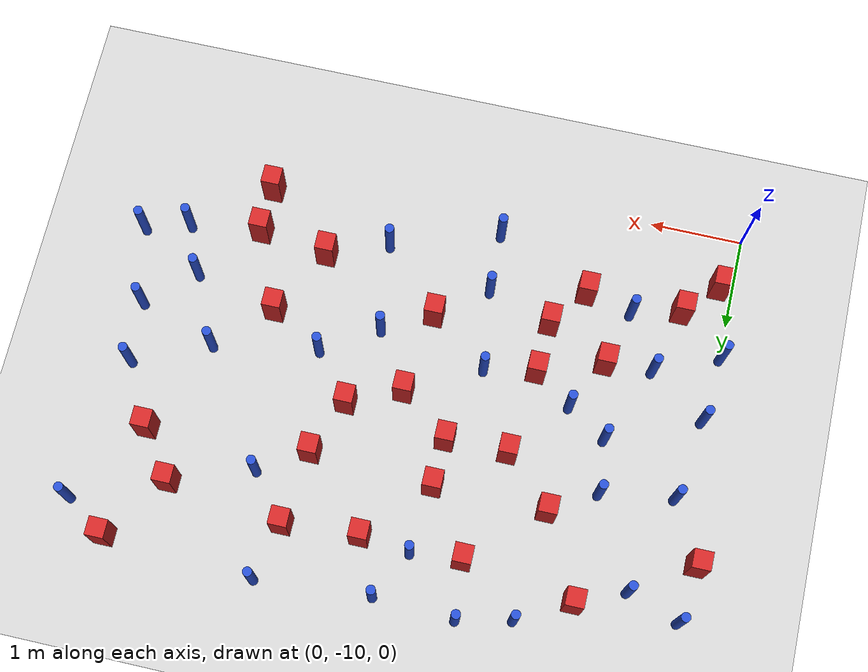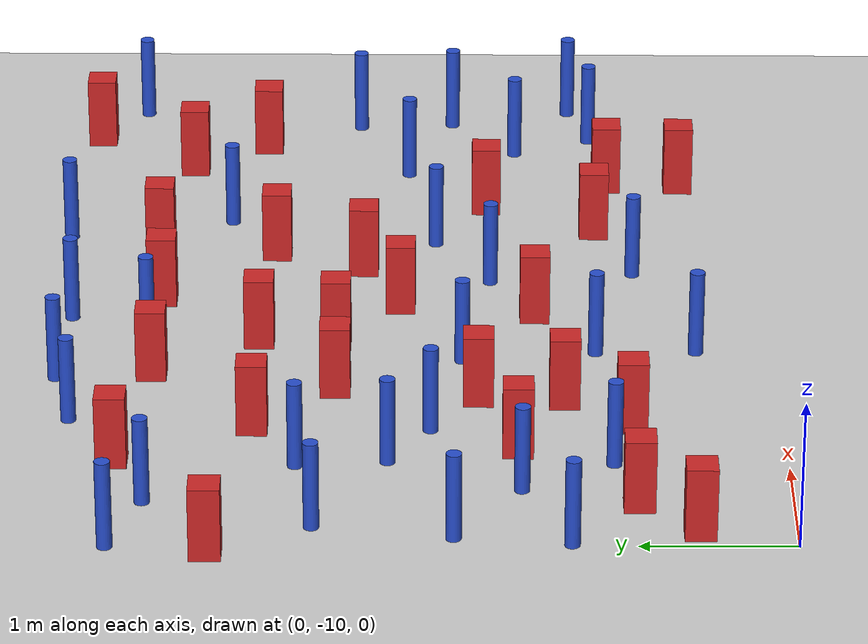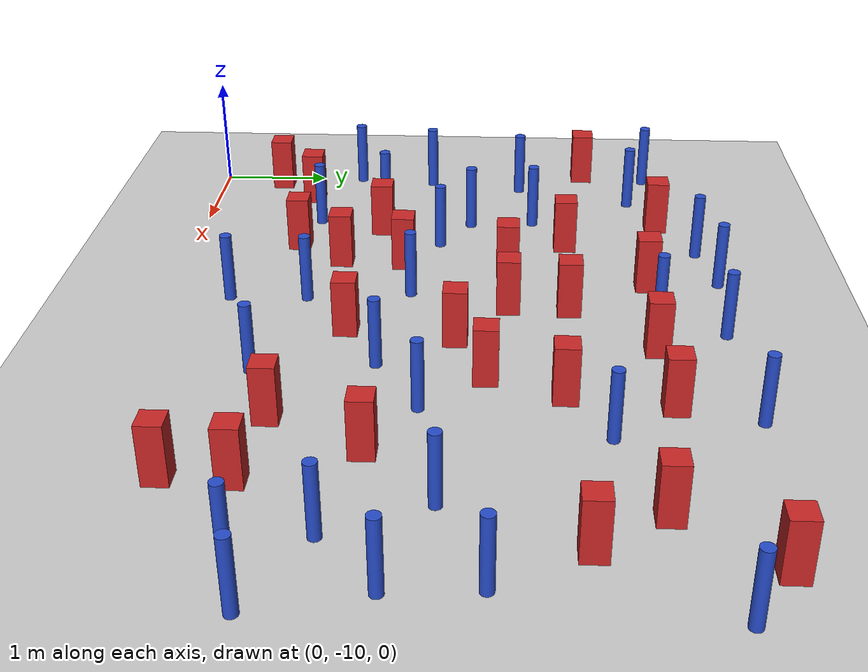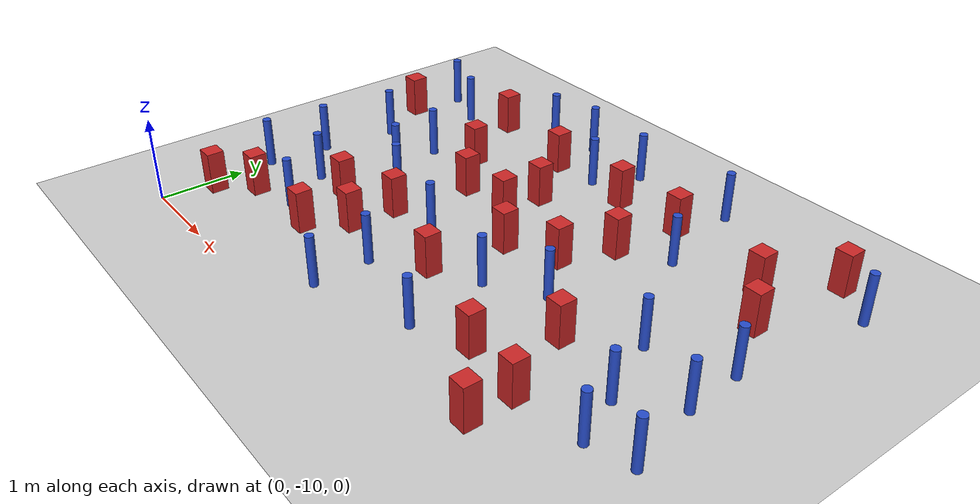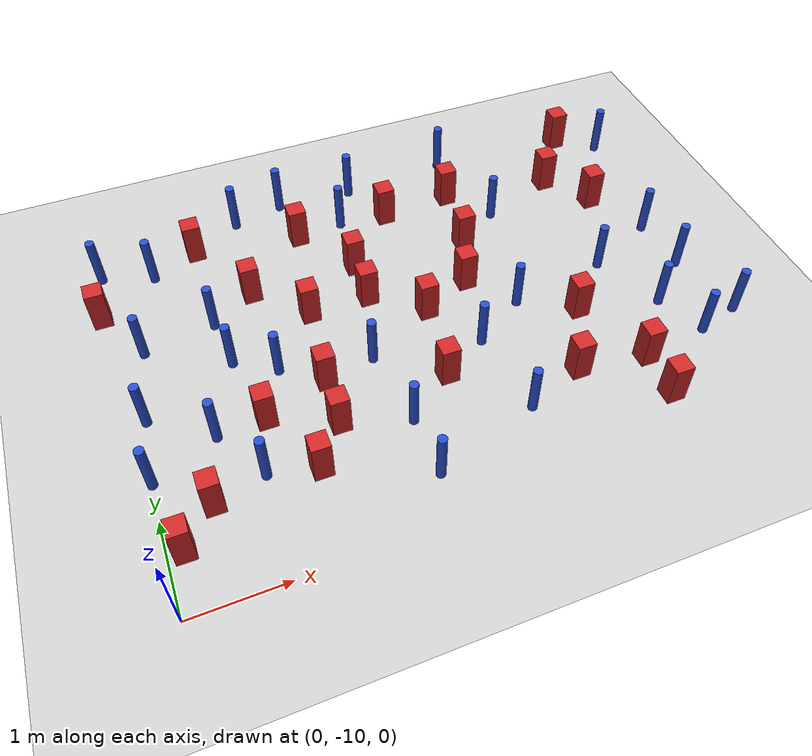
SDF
<sdf version="1.6">
 <world name="default">
  <model name="ground_plane">
   <static>1</static>
   <link name="link">
    <collision name="collision">
     <geometry><plane><normal>0 0 1</normal><size>100 100</size></plane></geometry>
     <surface><friction><ode><mu>100</mu><mu2>50</mu2></ode></friction></surface>
    </collision>
    <visual name="visual">
     <cast_shadows>0</cast_shadows>
     <geometry><plane><normal>0 0 1</normal><size>100 100</size></plane></geometry>
     <material>
      <ambient>1.0 1.0 1.0 1.0</ambient>
      <diffuse>0.8 0.8 0.8 1.0</diffuse>
      <specular>0.01 0.01 0.01 1.000000</specular>
     </material>
    </visual>
   </link>
  </model>
  <model name="square_post_obstacle0">
   <static>true</static>
   <pose>2.7218843252 -6.55835641108 8.22691968438e-08 7.2212513382e-06 -7.54495500217e-07 2.29674213826e-05</pose>
   <link name="link">
    <pose>0 0 0.25 0 -0 0</pose>
    <inertial>
     <mass>100</mass>
     <inertia>
      <ixx>0.166667</ixx>
      <ixy>0</ixy>
      <ixz>0</ixz>
      <iyy>0.166667</iyy>
      <iyz>0</iyz>
      <izz>0.166667</izz>
     </inertia>
    </inertial>
    <collision name="collision"><geometry><box><size>.2 .2 .5</size></box></geometry></collision>
    <visual name="visual">
     <geometry><box><size>.2 .2 .5</size></box></geometry>
     <material>
      <script><name>Gazebo/Red</name><uri>file://media/materials/scripts/gazebo.material</uri></script>
     </material>
    </visual>
   </link>
  </model>
  <model name="square_post_obstacle11">
   <static>true</static>
   <pose>3.11358270299 -8.40264183046 8.22691968438e-08 7.22125133819e-06 -7.54495500217e-07 2.29674213826e-05</pose>
   <link name="link">
    <pose>0 0 0.25 0 -0 0</pose>
    <inertial>
     <mass>100</mass>
     <inertia>
      <ixx>0.166667</ixx>
      <ixy>0</ixy>
      <ixz>0</ixz>
      <iyy>0.166667</iyy>
      <iyz>0</iyz>
      <izz>0.166667</izz>
     </inertia>
    </inertial>
    <collision name="collision"><geometry><box><size>.2 .2 .5</size></box></geometry></collision>
    <visual name="visual">
     <geometry><box><size>.2 .2 .5</size></box></geometry>
     <material>
      <script><name>Gazebo/Red</name><uri>file://media/materials/scripts/gazebo.material</uri></script>
     </material>
    </visual>
   </link>
  </model>
  <model name="square_post_obstacle23">
   <static>true</static>
   <pose>5.94298214702 -5.29836372098 8.22691968438e-08 7.2212513382e-06 -7.54495500217e-07 2.29674213826e-05</pose>
   <link name="link">
    <pose>0 0 0.25 0 -0 0</pose>
    <inertial>
     <mass>100</mass>
     <inertia>
      <ixx>0.166667</ixx>
      <ixy>0</ixy>
      <ixz>0</ixz>
      <iyy>0.166667</iyy>
      <iyz>0</iyz>
      <izz>0.166667</izz>
     </inertia>
    </inertial>
    <collision name="collision"><geometry><box><size>.2 .2 .5</size></box></geometry></collision>
    <visual name="visual">
     <geometry><box><size>.2 .2 .5</size></box></geometry>
     <material>
      <script><name>Gazebo/Red</name><uri>file://media/materials/scripts/gazebo.material</uri></script>
     </material>
    </visual>
   </link>
  </model>
  <model name="pole_obstacle19">
   <static>true</static>
   <pose>1.61590868251 -5.35970413288 2.88873142074e-08 -9.90536689852e-09 4.60219948989e-07 -1.2096599496e-07</pose>
   <link name="link">
    <pose>0 0 0.3 0 -0 0</pose>
    <inertial>
     <mass>1</mass>
     <inertia><ixx>0.145833</ixx><ixy>0</ixy><ixz>0</ixz><iyy>0.145833</iyy><iyz>0</iyz><izz>0.125</izz></inertia>
    </inertial>
    <collision name="collision">
     <geometry><cylinder><radius>0.05</radius><length>.6</length></cylinder></geometry>
    </collision>
    <visual name="visual">
     <geometry><cylinder><radius>0.05</radius><length>.6</length></cylinder></geometry>
     <material>
      <script><name>Gazebo/Blue</name><uri>file://media/materials/scripts/gazebo.material</uri></script>
     </material>
    </visual>
   </link>
  </model>
  <model name="pole_obstacle22">
   <static>true</static>
   <pose>5.95190879928 -8.82963823641 2.88873142074e-08 -9.9053668967e-09 4.60219948993e-07 -1.20965994957e-07</pose>
   <link name="link">
    <pose>0 0 0.3 0 -0 0</pose>
    <inertial>
     <mass>1</mass>
     <inertia><ixx>0.145833</ixx><ixy>0</ixy><ixz>0</ixz><iyy>0.145833</iyy><iyz>0</iyz><izz>0.125</izz></inertia>
    </inertial>
    <collision name="collision">
     <geometry><cylinder><radius>0.05</radius><length>.6</length></cylinder></geometry>
    </collision>
    <visual name="visual">
     <geometry><cylinder><radius>0.05</radius><length>.6</length></cylinder></geometry>
     <material>
      <script><name>Gazebo/Blue</name><uri>file://media/materials/scripts/gazebo.material</uri></script>
     </material>
    </visual>
   </link>
  </model>
  <model name="pole_obstacle23">
   <static>true</static>
   <pose>2.58390202402 -8.80233639551 2.88873142074e-08 -9.90536692318e-09 4.6021994893e-07 -1.20965994988e-07</pose>
   <link name="link">
    <pose>0 0 0.3 0 -0 0</pose>
    <inertial>
     <mass>1</mass>
     <inertia><ixx>0.145833</ixx><ixy>0</ixy><ixz>0</ixz><iyy>0.145833</iyy><iyz>0</iyz><izz>0.125</izz></inertia>
    </inertial>
    <collision name="collision">
     <geometry><cylinder><radius>0.05</radius><length>.6</length></cylinder></geometry>
    </collision>
    <visual name="visual">
     <geometry><cylinder><radius>0.05</radius><length>.6</length></cylinder></geometry>
     <material>
      <script><name>Gazebo/Blue</name><uri>file://media/materials/scripts/gazebo.material</uri></script>
     </material>
    </visual>
   </link>
  </model>
  <model name="square_post_obstacle34">
   <static>true</static>
   <pose>3.24729588652 -7.49678713473 8.22691968438e-08 7.2212513382e-06 -7.54495500217e-07 2.29674213826e-05</pose>
   <link name="link">
    <pose>0 0 0.25 0 -0 0</pose>
    <inertial>
     <mass>100</mass>
     <inertia>
      <ixx>0.166667</ixx>
      <ixy>0</ixy>
      <ixz>0</ixz>
      <iyy>0.166667</iyy>
      <iyz>0</iyz>
      <izz>0.166667</izz>
     </inertia>
    </inertial>
    <collision name="collision"><geometry><box><size>.2 .2 .5</size></box></geometry></collision>
    <visual name="visual">
     <geometry><box><size>.2 .2 .5</size></box></geometry>
     <material>
      <script><name>Gazebo/Red</name><uri>file://media/materials/scripts/gazebo.material</uri></script>
     </material>
    </visual>
   </link>
  </model>
  <model name="pole_obstacle35">
   <static>true</static>
   <pose>5.72329134309 -8.29351836268 2.88873142074e-08 -9.9053668967e-09 4.60219948993e-07 -1.20965994957e-07</pose>
   <link name="link">
    <pose>0 0 0.3 0 -0 0</pose>
    <inertial>
     <mass>1</mass>
     <inertia><ixx>0.145833</ixx><ixy>0</ixy><ixz>0</ixz><iyy>0.145833</iyy><iyz>0</iyz><izz>0.125</izz></inertia>
    </inertial>
    <collision name="collision">
     <geometry><cylinder><radius>0.05</radius><length>.6</length></cylinder></geometry>
    </collision>
    <visual name="visual">
     <geometry><cylinder><radius>0.05</radius><length>.6</length></cylinder></geometry>
     <material>
      <script><name>Gazebo/Blue</name><uri>file://media/materials/scripts/gazebo.material</uri></script>
     </material>
    </visual>
   </link>
  </model>
  <model name="square_post_obstacle40">
   <static>true</static>
   <pose>1.05726657079 -5.67814350281 8.22691968438e-08 7.2212513382e-06 -7.54495500217e-07 2.29674213826e-05</pose>
   <link name="link">
    <pose>0 0 0.25 0 -0 0</pose>
    <inertial>
     <mass>100</mass>
     <inertia>
      <ixx>0.166667</ixx>
      <ixy>0</ixy>
      <ixz>0</ixz>
      <iyy>0.166667</iyy>
      <iyz>0</iyz>
      <izz>0.166667</izz>
     </inertia>
    </inertial>
    <collision name="collision"><geometry><box><size>.2 .2 .5</size></box></geometry></collision>
    <visual name="visual">
     <geometry><box><size>.2 .2 .5</size></box></geometry>
     <material>
      <script><name>Gazebo/Red</name><uri>file://media/materials/scripts/gazebo.material</uri></script>
     </material>
    </visual>
   </link>
  </model>
  <model name="pole_obstacle47">
   <static>true</static>
   <pose>3.07542348721 -5.2802240507 2.88873142074e-08 -9.90536689859e-09 4.60219948989e-07 -1.20965994961e-07</pose>
   <link name="link">
    <pose>0 0 0.3 0 -0 0</pose>
    <inertial>
     <mass>1</mass>
     <inertia><ixx>0.145833</ixx><ixy>0</ixy><ixz>0</ixz><iyy>0.145833</iyy><iyz>0</iyz><izz>0.125</izz></inertia>
    </inertial>
    <collision name="collision">
     <geometry><cylinder><radius>0.05</radius><length>.6</length></cylinder></geometry>
    </collision>
    <visual name="visual">
     <geometry><cylinder><radius>0.05</radius><length>.6</length></cylinder></geometry>
     <material>
      <script><name>Gazebo/Blue</name><uri>file://media/materials/scripts/gazebo.material</uri></script>
     </material>
    </visual>
   </link>
  </model>
  <model name="pole_obstacle50">
   <static>true</static>
   <pose>6.17605536174 -7.17819826401 2.88873142074e-08 -9.90536690842e-09 4.60219948965e-07 -1.20965994976e-07</pose>
   <link name="link">
    <pose>0 0 0.3 0 -0 0</pose>
    <inertial>
     <mass>1</mass>
     <inertia><ixx>0.145833</ixx><ixy>0</ixy><ixz>0</ixz><iyy>0.145833</iyy><iyz>0</iyz><izz>0.125</izz></inertia>
    </inertial>
    <collision name="collision">
     <geometry><cylinder><radius>0.05</radius><length>.6</length></cylinder></geometry>
    </collision>
    <visual name="visual">
     <geometry><cylinder><radius>0.05</radius><length>.6</length></cylinder></geometry>
     <material>
      <script><name>Gazebo/Blue</name><uri>file://media/materials/scripts/gazebo.material</uri></script>
     </material>
    </visual>
   </link>
  </model>
  <model name="pole_obstacle51">
   <static>true</static>
   <pose>5.36933343209 -7.53752858758 2.88873142074e-08 -9.90536690842e-09 4.60219948965e-07 -1.20965994976e-07</pose>
   <link name="link">
    <pose>0 0 0.3 0 -0 0</pose>
    <inertial>
     <mass>1</mass>
     <inertia><ixx>0.145833</ixx><ixy>0</ixy><ixz>0</ixz><iyy>0.145833</iyy><iyz>0</iyz><izz>0.125</izz></inertia>
    </inertial>
    <collision name="collision">
     <geometry><cylinder><radius>0.05</radius><length>.6</length></cylinder></geometry>
    </collision>
    <visual name="visual">
     <geometry><cylinder><radius>0.05</radius><length>.6</length></cylinder></geometry>
     <material>
      <script><name>Gazebo/Blue</name><uri>file://media/materials/scripts/gazebo.material</uri></script>
     </material>
    </visual>
   </link>
  </model>
  <model name="pole_obstacle58">
   <static>true</static>
   <pose>2.59992787232 -9.46889273143 2.88873142074e-08 -9.90536692318e-09 4.6021994893e-07 -1.20965994988e-07</pose>
   <link name="link">
    <pose>0 0 0.3 0 -0 0</pose>
    <inertial>
     <mass>1</mass>
     <inertia><ixx>0.145833</ixx><ixy>0</ixy><ixz>0</ixz><iyy>0.145833</iyy><iyz>0</iyz><izz>0.125</izz></inertia>
    </inertial>
    <collision name="collision">
     <geometry><cylinder><radius>0.05</radius><length>.6</length></cylinder></geometry>
    </collision>
    <visual name="visual">
     <geometry><cylinder><radius>0.05</radius><length>.6</length></cylinder></geometry>
     <material>
      <script><name>Gazebo/Blue</name><uri>file://media/materials/scripts/gazebo.material</uri></script>
     </material>
    </visual>
   </link>
  </model>
  <model name="square_post_obstacle66">
   <static>true</static>
   <pose>-0.115516418615 -6.33214705721 8.22691968438e-08 7.2212513382e-06 -7.54495500217e-07 2.29674213826e-05</pose>
   <link name="link">
    <pose>0 0 0.25 0 -0 0</pose>
    <inertial>
     <mass>100</mass>
     <inertia>
      <ixx>0.166667</ixx>
      <ixy>0</ixy>
      <ixz>0</ixz>
      <iyy>0.166667</iyy>
      <iyz>0</iyz>
      <izz>0.166667</izz>
     </inertia>
    </inertial>
    <collision name="collision"><geometry><box><size>.2 .2 .5</size></box></geometry></collision>
    <visual name="visual">
     <geometry><box><size>.2 .2 .5</size></box></geometry>
     <material>
      <script><name>Gazebo/Red</name><uri>file://media/materials/scripts/gazebo.material</uri></script>
     </material>
    </visual>
   </link>
  </model>
  <model name="square_post_obstacle68">
   <static>true</static>
   <pose>2.25495604698 -5.86393088758 8.22691968438e-08 7.2212513382e-06 -7.54495500217e-07 2.29674213826e-05</pose>
   <link name="link">
    <pose>0 0 0.25 0 -0 0</pose>
    <inertial>
     <mass>100</mass>
     <inertia>
      <ixx>0.166667</ixx>
      <ixy>0</ixy>
      <ixz>0</ixz>
      <iyy>0.166667</iyy>
      <iyz>0</iyz>
      <izz>0.166667</izz>
     </inertia>
    </inertial>
    <collision name="collision"><geometry><box><size>.2 .2 .5</size></box></geometry></collision>
    <visual name="visual">
     <geometry><box><size>.2 .2 .5</size></box></geometry>
     <material>
      <script><name>Gazebo/Red</name><uri>file://media/materials/scripts/gazebo.material</uri></script>
     </material>
    </visual>
   </link>
  </model>
  <model name="pole_obstacle76">
   <static>true</static>
   <pose>1.06763246138 -7.43721737062 2.88873142074e-08 -9.90536689852e-09 4.60219948989e-07 -1.2096599496e-07</pose>
   <link name="link">
    <pose>0 0 0.3 0 -0 0</pose>
    <inertial>
     <mass>1</mass>
     <inertia><ixx>0.145833</ixx><ixy>0</ixy><ixz>0</ixz><iyy>0.145833</iyy><iyz>0</iyz><izz>0.125</izz></inertia>
    </inertial>
    <collision name="collision">
     <geometry><cylinder><radius>0.05</radius><length>.6</length></cylinder></geometry>
    </collision>
    <visual name="visual">
     <geometry><cylinder><radius>0.05</radius><length>.6</length></cylinder></geometry>
     <material>
      <script><name>Gazebo/Blue</name><uri>file://media/materials/scripts/gazebo.material</uri></script>
     </material>
    </visual>
   </link>
  </model>
  <model name="pole_obstacle80">
   <static>true</static>
   <pose>0.530841621859 -5.90233270735 2.88873142074e-08 -9.90536689714e-09 4.60219948992e-07 -1.20965994957e-07</pose>
   <link name="link">
    <pose>0 0 0.3 0 -0 0</pose>
    <inertial>
     <mass>1</mass>
     <inertia><ixx>0.145833</ixx><ixy>0</ixy><ixz>0</ixz><iyy>0.145833</iyy><iyz>0</iyz><izz>0.125</izz></inertia>
    </inertial>
    <collision name="collision">
     <geometry><cylinder><radius>0.05</radius><length>.6</length></cylinder></geometry>
    </collision>
    <visual name="visual">
     <geometry><cylinder><radius>0.05</radius><length>.6</length></cylinder></geometry>
     <material>
      <script><name>Gazebo/Blue</name><uri>file://media/materials/scripts/gazebo.material</uri></script>
     </material>
    </visual>
   </link>
  </model>
  <model name="square_post_obstacle82">
   <static>true</static>
   <pose>1.88059493149 -8.5820744699 8.22691968438e-08 7.22125133819e-06 -7.54495500217e-07 2.29674213826e-05</pose>
   <link name="link">
    <pose>0 0 0.25 0 -0 0</pose>
    <inertial>
     <mass>100</mass>
     <inertia>
      <ixx>0.166667</ixx>
      <ixy>0</ixy>
      <ixz>0</ixz>
      <iyy>0.166667</iyy>
      <iyz>0</iyz>
      <izz>0.166667</izz>
     </inertia>
    </inertial>
    <collision name="collision"><geometry><box><size>.2 .2 .5</size></box></geometry></collision>
    <visual name="visual">
     <geometry><box><size>.2 .2 .5</size></box></geometry>
     <material>
      <script><name>Gazebo/Red</name><uri>file://media/materials/scripts/gazebo.material</uri></script>
     </material>
    </visual>
   </link>
  </model>
  <model name="square_post_obstacle85">
   <static>true</static>
   <pose>5.15979074302 -9.44935939628 8.22691968438e-08 7.2212513382e-06 -7.54495500217e-07 2.29674213826e-05</pose>
   <link name="link">
    <pose>0 0 0.25 0 -0 0</pose>
    <inertial>
     <mass>100</mass>
     <inertia>
      <ixx>0.166667</ixx>
      <ixy>0</ixy>
      <ixz>0</ixz>
      <iyy>0.166667</iyy>
      <iyz>0</iyz>
      <izz>0.166667</izz>
     </inertia>
    </inertial>
    <collision name="collision"><geometry><box><size>.2 .2 .5</size></box></geometry></collision>
    <visual name="visual">
     <geometry><box><size>.2 .2 .5</size></box></geometry>
     <material>
      <script><name>Gazebo/Red</name><uri>file://media/materials/scripts/gazebo.material</uri></script>
     </material>
    </visual>
   </link>
  </model>
  <model name="square_post_obstacle88">
   <static>true</static>
   <pose>3.34173863509 -5.874349319 8.22691968438e-08 7.2212513382e-06 -7.54495500217e-07 2.29674213826e-05</pose>
   <link name="link">
    <pose>0 0 0.25 0 -0 0</pose>
    <inertial>
     <mass>100</mass>
     <inertia>
      <ixx>0.166667</ixx>
      <ixy>0</ixy>
      <ixz>0</ixz>
      <iyy>0.166667</iyy>
      <iyz>0</iyz>
      <izz>0.166667</izz>
     </inertia>
    </inertial>
    <collision name="collision"><geometry><box><size>.2 .2 .5</size></box></geometry></collision>
    <visual name="visual">
     <geometry><box><size>.2 .2 .5</size></box></geometry>
     <material>
      <script><name>Gazebo/Red</name><uri>file://media/materials/scripts/gazebo.material</uri></script>
     </material>
    </visual>
   </link>
  </model>
  <model name="pole_obstacle101">
   <static>true</static>
   <pose>4.57029592255 -6.30392420901 2.88873142074e-08 -9.90536690842e-09 4.60219948965e-07 -1.20965994976e-07</pose>
   <link name="link">
    <pose>0 0 0.3 0 -0 0</pose>
    <inertial>
     <mass>1</mass>
     <inertia><ixx>0.145833</ixx><ixy>0</ixy><ixz>0</ixz><iyy>0.145833</iyy><iyz>0</iyz><izz>0.125</izz></inertia>
    </inertial>
    <collision name="collision">
     <geometry><cylinder><radius>0.05</radius><length>.6</length></cylinder></geometry>
    </collision>
    <visual name="visual">
     <geometry><cylinder><radius>0.05</radius><length>.6</length></cylinder></geometry>
     <material>
      <script><name>Gazebo/Blue</name><uri>file://media/materials/scripts/gazebo.material</uri></script>
     </material>
    </visual>
   </link>
  </model>
  <model name="square_post_obstacle92">
   <static>true</static>
   <pose>4.41185303808 -8.83165992142 8.22691968438e-08 7.2212513382e-06 -7.54495500217e-07 2.29674213826e-05</pose>
   <link name="link">
    <pose>0 0 0.25 0 -0 0</pose>
    <inertial>
     <mass>100</mass>
     <inertia>
      <ixx>0.166667</ixx>
      <ixy>0</ixy>
      <ixz>0</ixz>
      <iyy>0.166667</iyy>
      <iyz>0</iyz>
      <izz>0.166667</izz>
     </inertia>
    </inertial>
    <collision name="collision"><geometry><box><size>.2 .2 .5</size></box></geometry></collision>
    <visual name="visual">
     <geometry><box><size>.2 .2 .5</size></box></geometry>
     <material>
      <script><name>Gazebo/Red</name><uri>file://media/materials/scripts/gazebo.material</uri></script>
     </material>
    </visual>
   </link>
  </model>
  <model name="square_post_obstacle95">
   <static>true</static>
   <pose>1.55726092994 -9.0126286477 8.22691968438e-08 7.2212513382e-06 -7.54495500217e-07 2.29674213826e-05</pose>
   <link name="link">
    <pose>0 0 0.25 0 -0 0</pose>
    <inertial>
     <mass>100</mass>
     <inertia>
      <ixx>0.166667</ixx>
      <ixy>0</ixy>
      <ixz>0</ixz>
      <iyy>0.166667</iyy>
      <iyz>0</iyz>
      <izz>0.166667</izz>
     </inertia>
    </inertial>
    <collision name="collision"><geometry><box><size>.2 .2 .5</size></box></geometry></collision>
    <visual name="visual">
     <geometry><box><size>.2 .2 .5</size></box></geometry>
     <material>
      <script><name>Gazebo/Red</name><uri>file://media/materials/scripts/gazebo.material</uri></script>
     </material>
    </visual>
   </link>
  </model>
  <model name="pole_obstacle113">
   <static>true</static>
   <pose>4.31880272222 -5.18488100436 2.88873142074e-08 -9.90536690842e-09 4.60219948965e-07 -1.20965994976e-07</pose>
   <link name="link">
    <pose>0 0 0.3 0 -0 0</pose>
    <inertial>
     <mass>1</mass>
     <inertia><ixx>0.145833</ixx><ixy>0</ixy><ixz>0</ixz><iyy>0.145833</iyy><iyz>0</iyz><izz>0.125</izz></inertia>
    </inertial>
    <collision name="collision">
     <geometry><cylinder><radius>0.05</radius><length>.6</length></cylinder></geometry>
    </collision>
    <visual name="visual">
     <geometry><cylinder><radius>0.05</radius><length>.6</length></cylinder></geometry>
     <material>
      <script><name>Gazebo/Blue</name><uri>file://media/materials/scripts/gazebo.material</uri></script>
     </material>
    </visual>
   </link>
  </model>
  <model name="square_post_obstacle107">
   <static>true</static>
   <pose>4.8066584455 -8.08352541405 8.22691968438e-08 7.22125133819e-06 -7.54495500217e-07 2.29674213826e-05</pose>
   <link name="link">
    <pose>0 0 0.25 0 -0 0</pose>
    <inertial>
     <mass>100</mass>
     <inertia>
      <ixx>0.166667</ixx>
      <ixy>0</ixy>
      <ixz>0</ixz>
      <iyy>0.166667</iyy>
      <iyz>0</iyz>
      <izz>0.166667</izz>
     </inertia>
    </inertial>
    <collision name="collision"><geometry><box><size>.2 .2 .5</size></box></geometry></collision>
    <visual name="visual">
     <geometry><box><size>.2 .2 .5</size></box></geometry>
     <material>
      <script><name>Gazebo/Red</name><uri>file://media/materials/scripts/gazebo.material</uri></script>
     </material>
    </visual>
   </link>
  </model>
  <model name="pole_obstacle119">
   <static>true</static>
   <pose>1.01155771008 -6.84899362626 2.88873142074e-08 -9.90536689905e-09 4.60219948988e-07 -1.20965994961e-07</pose>
   <link name="link">
    <pose>0 0 0.3 0 -0 0</pose>
    <inertial>
     <mass>1</mass>
     <inertia><ixx>0.145833</ixx><ixy>0</ixy><ixz>0</ixz><iyy>0.145833</iyy><iyz>0</iyz><izz>0.125</izz></inertia>
    </inertial>
    <collision name="collision">
     <geometry><cylinder><radius>0.05</radius><length>.6</length></cylinder></geometry>
    </collision>
    <visual name="visual">
     <geometry><cylinder><radius>0.05</radius><length>.6</length></cylinder></geometry>
     <material>
      <script><name>Gazebo/Blue</name><uri>file://media/materials/scripts/gazebo.material</uri></script>
     </material>
    </visual>
   </link>
  </model>
  <model name="square_post_obstacle109">
   <static>true</static>
   <pose>1.91263727707 -8.01976425266 8.22691968438e-08 7.2212513382e-06 -7.54495500217e-07 2.29674213826e-05</pose>
   <link name="link">
    <pose>0 0 0.25 0 -0 0</pose>
    <inertial>
     <mass>100</mass>
     <inertia>
      <ixx>0.166667</ixx>
      <ixy>0</ixy>
      <ixz>0</ixz>
      <iyy>0.166667</iyy>
      <iyz>0</iyz>
      <izz>0.166667</izz>
     </inertia>
    </inertial>
    <collision name="collision"><geometry><box><size>.2 .2 .5</size></box></geometry></collision>
    <visual name="visual">
     <geometry><box><size>.2 .2 .5</size></box></geometry>
     <material>
      <script><name>Gazebo/Red</name><uri>file://media/materials/scripts/gazebo.material</uri></script>
     </material>
    </visual>
   </link>
  </model>
  <model name="pole_obstacle120">
   <static>true</static>
   <pose>0.0139330233849 -8.59417031012 2.88873142074e-08 -9.90536690632e-09 4.6021994897e-07 -1.20965994973e-07</pose>
   <link name="link">
    <pose>0 0 0.3 0 -0 0</pose>
    <inertial>
     <mass>1</mass>
     <inertia><ixx>0.145833</ixx><ixy>0</ixy><ixz>0</ixz><iyy>0.145833</iyy><iyz>0</iyz><izz>0.125</izz></inertia>
    </inertial>
    <collision name="collision">
     <geometry><cylinder><radius>0.05</radius><length>.6</length></cylinder></geometry>
    </collision>
    <visual name="visual">
     <geometry><cylinder><radius>0.05</radius><length>.6</length></cylinder></geometry>
     <material>
      <script><name>Gazebo/Blue</name><uri>file://media/materials/scripts/gazebo.material</uri></script>
     </material>
    </visual>
   </link>
  </model>
  <model name="pole_obstacle125">
   <static>true</static>
   <pose>6.43402719485 -8.68930776559 2.88873142074e-08 -9.9053668967e-09 4.60219948993e-07 -1.20965994957e-07</pose>
   <link name="link">
    <pose>0 0 0.3 0 -0 0</pose>
    <inertial>
     <mass>1</mass>
     <inertia><ixx>0.145833</ixx><ixy>0</ixy><ixz>0</ixz><iyy>0.145833</iyy><iyz>0</iyz><izz>0.125</izz></inertia>
    </inertial>
    <collision name="collision">
     <geometry><cylinder><radius>0.05</radius><length>.6</length></cylinder></geometry>
    </collision>
    <visual name="visual">
     <geometry><cylinder><radius>0.05</radius><length>.6</length></cylinder></geometry>
     <material>
      <script><name>Gazebo/Blue</name><uri>file://media/materials/scripts/gazebo.material</uri></script>
     </material>
    </visual>
   </link>
  </model>
  <model name="pole_obstacle139">
   <static>true</static>
   <pose>1.04673451286 -8.8836434966 2.88873142074e-08 -9.90536690572e-09 4.60219948972e-07 -1.20965994971e-07</pose>
   <link name="link">
    <pose>0 0 0.3 0 -0 0</pose>
    <inertial>
     <mass>1</mass>
     <inertia><ixx>0.145833</ixx><ixy>0</ixy><ixz>0</ixz><iyy>0.145833</iyy><iyz>0</iyz><izz>0.125</izz></inertia>
    </inertial>
    <collision name="collision">
     <geometry><cylinder><radius>0.05</radius><length>.6</length></cylinder></geometry>
    </collision>
    <visual name="visual">
     <geometry><cylinder><radius>0.05</radius><length>.6</length></cylinder></geometry>
     <material>
      <script><name>Gazebo/Blue</name><uri>file://media/materials/scripts/gazebo.material</uri></script>
     </material>
    </visual>
   </link>
  </model>
  <model name="square_post_obstacle132">
   <static>true</static>
   <pose>5.80871752171 -6.51492779399 8.22691968438e-08 7.2212513382e-06 -7.54495500217e-07 2.29674213826e-05</pose>
   <link name="link">
    <pose>0 0 0.25 0 -0 0</pose>
    <inertial>
     <mass>100</mass>
     <inertia>
      <ixx>0.166667</ixx>
      <ixy>0</ixy>
      <ixz>0</ixz>
      <iyy>0.166667</iyy>
      <iyz>0</iyz>
      <izz>0.166667</izz>
     </inertia>
    </inertial>
    <collision name="collision"><geometry><box><size>.2 .2 .5</size></box></geometry></collision>
    <visual name="visual">
     <geometry><box><size>.2 .2 .5</size></box></geometry>
     <material>
      <script><name>Gazebo/Red</name><uri>file://media/materials/scripts/gazebo.material</uri></script>
     </material>
    </visual>
   </link>
  </model>
  <model name="pole_obstacle151">
   <static>true</static>
   <pose>4.23413847675 -7.73313541468 2.88873142074e-08 -9.90536690842e-09 4.60219948965e-07 -1.20965994976e-07</pose>
   <link name="link">
    <pose>0 0 0.3 0 -0 0</pose>
    <inertial>
     <mass>1</mass>
     <inertia><ixx>0.145833</ixx><ixy>0</ixy><ixz>0</ixz><iyy>0.145833</iyy><iyz>0</iyz><izz>0.125</izz></inertia>
    </inertial>
    <collision name="collision">
     <geometry><cylinder><radius>0.05</radius><length>.6</length></cylinder></geometry>
    </collision>
    <visual name="visual">
     <geometry><cylinder><radius>0.05</radius><length>.6</length></cylinder></geometry>
     <material>
      <script><name>Gazebo/Blue</name><uri>file://media/materials/scripts/gazebo.material</uri></script>
     </material>
    </visual>
   </link>
  </model>
  <model name="square_post_obstacle141">
   <static>true</static>
   <pose>1.50584955038 -6.55665547474 8.22691968438e-08 7.2212513382e-06 -7.54495500217e-07 2.29674213826e-05</pose>
   <link name="link">
    <pose>0 0 0.25 0 -0 0</pose>
    <inertial>
     <mass>100</mass>
     <inertia>
      <ixx>0.166667</ixx>
      <ixy>0</ixy>
      <ixz>0</ixz>
      <iyy>0.166667</iyy>
      <iyz>0</iyz>
      <izz>0.166667</izz>
     </inertia>
    </inertial>
    <collision name="collision"><geometry><box><size>.2 .2 .5</size></box></geometry></collision>
    <visual name="visual">
     <geometry><box><size>.2 .2 .5</size></box></geometry>
     <material>
      <script><name>Gazebo/Red</name><uri>file://media/materials/scripts/gazebo.material</uri></script>
     </material>
    </visual>
   </link>
  </model>
  <model name="square_post_obstacle148">
   <static>true</static>
   <pose>5.43644636012 -5.99747458983 8.22691968438e-08 7.2212513382e-06 -7.54495500217e-07 2.29674213826e-05</pose>
   <link name="link">
    <pose>0 0 0.25 0 -0 0</pose>
    <inertial>
     <mass>100</mass>
     <inertia>
      <ixx>0.166667</ixx>
      <ixy>0</ixy>
      <ixz>0</ixz>
      <iyy>0.166667</iyy>
      <iyz>0</iyz>
      <izz>0.166667</izz>
     </inertia>
    </inertial>
    <collision name="collision"><geometry><box><size>.2 .2 .5</size></box></geometry></collision>
    <visual name="visual">
     <geometry><box><size>.2 .2 .5</size></box></geometry>
     <material>
      <script><name>Gazebo/Red</name><uri>file://media/materials/scripts/gazebo.material</uri></script>
     </material>
    </visual>
   </link>
  </model>
  <model name="square_post_obstacle151">
   <static>true</static>
   <pose>0.160496290522 -9.38977470647 8.22691968438e-08 7.22125133819e-06 -7.54495500217e-07 2.29674213826e-05</pose>
   <link name="link">
    <pose>0 0 0.25 0 -0 0</pose>
    <inertial>
     <mass>100</mass>
     <inertia>
      <ixx>0.166667</ixx>
      <ixy>0</ixy>
      <ixz>0</ixz>
      <iyy>0.166667</iyy>
      <iyz>0</iyz>
      <izz>0.166667</izz>
     </inertia>
    </inertial>
    <collision name="collision"><geometry><box><size>.2 .2 .5</size></box></geometry></collision>
    <visual name="visual">
     <geometry><box><size>.2 .2 .5</size></box></geometry>
     <material>
      <script><name>Gazebo/Red</name><uri>file://media/materials/scripts/gazebo.material</uri></script>
     </material>
    </visual>
   </link>
  </model>
  <model name="pole_obstacle157">
   <static>true</static>
   <pose>1.49604847916 -7.70988237433 2.88873142074e-08 -9.90536689852e-09 4.60219948989e-07 -1.2096599496e-07</pose>
   <link name="link">
    <pose>0 0 0.3 0 -0 0</pose>
    <inertial>
     <mass>1</mass>
     <inertia><ixx>0.145833</ixx><ixy>0</ixy><ixz>0</ixz><iyy>0.145833</iyy><iyz>0</iyz><izz>0.125</izz></inertia>
    </inertial>
    <collision name="collision">
     <geometry><cylinder><radius>0.05</radius><length>.6</length></cylinder></geometry>
    </collision>
    <visual name="visual">
     <geometry><cylinder><radius>0.05</radius><length>.6</length></cylinder></geometry>
     <material>
      <script><name>Gazebo/Blue</name><uri>file://media/materials/scripts/gazebo.material</uri></script>
     </material>
    </visual>
   </link>
  </model>
  <model name="pole_obstacle161">
   <static>true</static>
   <pose>6.22638110088 -7.84625084234 2.88873142074e-08 -9.90536690842e-09 4.60219948965e-07 -1.20965994976e-07</pose>
   <link name="link">
    <pose>0 0 0.3 0 -0 0</pose>
    <inertial>
     <mass>1</mass>
     <inertia><ixx>0.145833</ixx><ixy>0</ixy><ixz>0</ixz><iyy>0.145833</iyy><iyz>0</iyz><izz>0.125</izz></inertia>
    </inertial>
    <collision name="collision">
     <geometry><cylinder><radius>0.05</radius><length>.6</length></cylinder></geometry>
    </collision>
    <visual name="visual">
     <geometry><cylinder><radius>0.05</radius><length>.6</length></cylinder></geometry>
     <material>
      <script><name>Gazebo/Blue</name><uri>file://media/materials/scripts/gazebo.material</uri></script>
     </material>
    </visual>
   </link>
  </model>
  <model name="pole_obstacle166">
   <static>true</static>
   <pose>0.0889030148295 -7.86020626173 2.88873142074e-08 -9.90536689742e-09 4.60219948992e-07 -1.2096599496e-07</pose>
   <link name="link">
    <pose>0 0 0.3 0 -0 0</pose>
    <inertial>
     <mass>1</mass>
     <inertia><ixx>0.145833</ixx><ixy>0</ixy><ixz>0</ixz><iyy>0.145833</iyy><iyz>0</iyz><izz>0.125</izz></inertia>
    </inertial>
    <collision name="collision">
     <geometry><cylinder><radius>0.05</radius><length>.6</length></cylinder></geometry>
    </collision>
    <visual name="visual">
     <geometry><cylinder><radius>0.05</radius><length>.6</length></cylinder></geometry>
     <material>
      <script><name>Gazebo/Blue</name><uri>file://media/materials/scripts/gazebo.material</uri></script>
     </material>
    </visual>
   </link>
  </model>
  <model name="pole_obstacle174">
   <static>true</static>
   <pose>0.704336690674 -8.2914720032 2.88873142074e-08 -9.90536690779e-09 4.60219948967e-07 -1.20965994975e-07</pose>
   <link name="link">
    <pose>0 0 0.3 0 -0 0</pose>
    <inertial>
     <mass>1</mass>
     <inertia><ixx>0.145833</ixx><ixy>0</ixy><ixz>0</ixz><iyy>0.145833</iyy><iyz>0</iyz><izz>0.125</izz></inertia>
    </inertial>
    <collision name="collision">
     <geometry><cylinder><radius>0.05</radius><length>.6</length></cylinder></geometry>
    </collision>
    <visual name="visual">
     <geometry><cylinder><radius>0.05</radius><length>.6</length></cylinder></geometry>
     <material>
      <script><name>Gazebo/Blue</name><uri>file://media/materials/scripts/gazebo.material</uri></script>
     </material>
    </visual>
   </link>
  </model>
  <model name="pole_obstacle179">
   <static>true</static>
   <pose>3.63867878551 -8.10698873429 2.88873142074e-08 -9.90536692318e-09 4.6021994893e-07 -1.20965994988e-07</pose>
   <link name="link">
    <pose>0 0 0.3 0 -0 0</pose>
    <inertial>
     <mass>1</mass>
     <inertia><ixx>0.145833</ixx><ixy>0</ixy><ixz>0</ixz><iyy>0.145833</iyy><iyz>0</iyz><izz>0.125</izz></inertia>
    </inertial>
    <collision name="collision">
     <geometry><cylinder><radius>0.05</radius><length>.6</length></cylinder></geometry>
    </collision>
    <visual name="visual">
     <geometry><cylinder><radius>0.05</radius><length>.6</length></cylinder></geometry>
     <material>
      <script><name>Gazebo/Blue</name><uri>file://media/materials/scripts/gazebo.material</uri></script>
     </material>
    </visual>
   </link>
  </model>
  <model name="pole_obstacle186">
   <static>true</static>
   <pose>-0.032331041785 -5.70625861295 2.88873142074e-08 -9.90536689643e-09 4.60219948994e-07 -1.20965994959e-07</pose>
   <link name="link">
    <pose>0 0 0.3 0 -0 0</pose>
    <inertial>
     <mass>1</mass>
     <inertia><ixx>0.145833</ixx><ixy>0</ixy><ixz>0</ixz><iyy>0.145833</iyy><iyz>0</iyz><izz>0.125</izz></inertia>
    </inertial>
    <collision name="collision">
     <geometry><cylinder><radius>0.05</radius><length>.6</length></cylinder></geometry>
    </collision>
    <visual name="visual">
     <geometry><cylinder><radius>0.05</radius><length>.6</length></cylinder></geometry>
     <material>
      <script><name>Gazebo/Blue</name><uri>file://media/materials/scripts/gazebo.material</uri></script>
     </material>
    </visual>
   </link>
  </model>
  <model name="square_post_obstacle181">
   <static>true</static>
   <pose>0.512654677851 -9.0242614768 8.22691968438e-08 7.22125133819e-06 -7.54495500217e-07 2.29674213826e-05</pose>
   <link name="link">
    <pose>0 0 0.25 0 -0 0</pose>
    <inertial>
     <mass>100</mass>
     <inertia>
      <ixx>0.166667</ixx>
      <ixy>0</ixy>
      <ixz>0</ixz>
      <iyy>0.166667</iyy>
      <iyz>0</iyz>
      <izz>0.166667</izz>
     </inertia>
    </inertial>
    <collision name="collision"><geometry><box><size>.2 .2 .5</size></box></geometry></collision>
    <visual name="visual">
     <geometry><box><size>.2 .2 .5</size></box></geometry>
     <material>
      <script><name>Gazebo/Red</name><uri>file://media/materials/scripts/gazebo.material</uri></script>
     </material>
    </visual>
   </link>
  </model>
  <model name="square_post_obstacle188">
   <static>true</static>
   <pose>3.81889937133 -7.23827381216 8.22691968438e-08 7.22125133819e-06 -7.54495500217e-07 2.29674213826e-05</pose>
   <link name="link">
    <pose>0 0 0.25 0 -0 0</pose>
    <inertial>
     <mass>100</mass>
     <inertia>
      <ixx>0.166667</ixx>
      <ixy>0</ixy>
      <ixz>0</ixz>
      <iyy>0.166667</iyy>
      <iyz>0</iyz>
      <izz>0.166667</izz>
     </inertia>
    </inertial>
    <collision name="collision"><geometry><box><size>.2 .2 .5</size></box></geometry></collision>
    <visual name="visual">
     <geometry><box><size>.2 .2 .5</size></box></geometry>
     <material>
      <script><name>Gazebo/Red</name><uri>file://media/materials/scripts/gazebo.material</uri></script>
     </material>
    </visual>
   </link>
  </model>
  <model name="square_post_obstacle190">
   <static>true</static>
   <pose>4.16373537299 -5.81810842315 8.22691968438e-08 7.2212513382e-06 -7.54495500217e-07 2.29674213826e-05</pose>
   <link name="link">
    <pose>0 0 0.25 0 -0 0</pose>
    <inertial>
     <mass>100</mass>
     <inertia>
      <ixx>0.166667</ixx>
      <ixy>0</ixy>
      <ixz>0</ixz>
      <iyy>0.166667</iyy>
      <iyz>0</iyz>
      <izz>0.166667</izz>
     </inertia>
    </inertial>
    <collision name="collision"><geometry><box><size>.2 .2 .5</size></box></geometry></collision>
    <visual name="visual">
     <geometry><box><size>.2 .2 .5</size></box></geometry>
     <material>
      <script><name>Gazebo/Red</name><uri>file://media/materials/scripts/gazebo.material</uri></script>
     </material>
    </visual>
   </link>
  </model>
  <model name="square_post_obstacle196">
   <static>true</static>
   <pose>1.21355195666 -8.27095032262 8.22691968438e-08 7.2212513382e-06 -7.54495500217e-07 2.29674213826e-05</pose>
   <link name="link">
    <pose>0 0 0.25 0 -0 0</pose>
    <inertial>
     <mass>100</mass>
     <inertia>
      <ixx>0.166667</ixx>
      <ixy>0</ixy>
      <ixz>0</ixz>
      <iyy>0.166667</iyy>
      <iyz>0</iyz>
      <izz>0.166667</izz>
     </inertia>
    </inertial>
    <collision name="collision"><geometry><box><size>.2 .2 .5</size></box></geometry></collision>
    <visual name="visual">
     <geometry><box><size>.2 .2 .5</size></box></geometry>
     <material>
      <script><name>Gazebo/Red</name><uri>file://media/materials/scripts/gazebo.material</uri></script>
     </material>
    </visual>
   </link>
  </model>
  <model name="square_post_obstacle199">
   <static>true</static>
   <pose>2.02896337502 -7.08127745889 8.22691968438e-08 7.22125133819e-06 -7.54495500217e-07 2.29674213826e-05</pose>
   <link name="link">
    <pose>0 0 0.25 0 -0 0</pose>
    <inertial>
     <mass>100</mass>
     <inertia>
      <ixx>0.166667</ixx>
      <ixy>0</ixy>
      <ixz>0</ixz>
      <iyy>0.166667</iyy>
      <iyz>0</iyz>
      <izz>0.166667</izz>
     </inertia>
    </inertial>
    <collision name="collision"><geometry><box><size>.2 .2 .5</size></box></geometry></collision>
    <visual name="visual">
     <geometry><box><size>.2 .2 .5</size></box></geometry>
     <material>
      <script><name>Gazebo/Red</name><uri>file://media/materials/scripts/gazebo.material</uri></script>
     </material>
    </visual>
   </link>
  </model>
  <model name="pole_obstacle193">
   <static>true</static>
   <pose>3.7628519716 -9.08300317657 2.88873142074e-08 -9.90536692318e-09 4.6021994893e-07 -1.20965994988e-07</pose>
   <link name="link">
    <pose>0 0 0.3 0 -0 0</pose>
    <inertial>
     <mass>1</mass>
     <inertia><ixx>0.145833</ixx><ixy>0</ixy><ixz>0</ixz><iyy>0.145833</iyy><iyz>0</iyz><izz>0.125</izz></inertia>
    </inertial>
    <collision name="collision">
     <geometry><cylinder><radius>0.05</radius><length>.6</length></cylinder></geometry>
    </collision>
    <visual name="visual">
     <geometry><cylinder><radius>0.05</radius><length>.6</length></cylinder></geometry>
     <material>
      <script><name>Gazebo/Blue</name><uri>file://media/materials/scripts/gazebo.material</uri></script>
     </material>
    </visual>
   </link>
  </model>
  <model name="pole_obstacle196">
   <static>true</static>
   <pose>0.222621680757 -6.97413342154 2.88873142074e-08 -9.90536689491e-09 4.60219948997e-07 -1.20965994955e-07</pose>
   <link name="link">
    <pose>0 0 0.3 0 -0 0</pose>
    <inertial>
     <mass>1</mass>
     <inertia><ixx>0.145833</ixx><ixy>0</ixy><ixz>0</ixz><iyy>0.145833</iyy><iyz>0</iyz><izz>0.125</izz></inertia>
    </inertial>
    <collision name="collision">
     <geometry><cylinder><radius>0.05</radius><length>.6</length></cylinder></geometry>
    </collision>
    <visual name="visual">
     <geometry><cylinder><radius>0.05</radius><length>.6</length></cylinder></geometry>
     <material>
      <script><name>Gazebo/Blue</name><uri>file://media/materials/scripts/gazebo.material</uri></script>
     </material>
    </visual>
   </link>
  </model>
  <model name="square_post_obstacle206">
   <static>true</static>
   <pose>2.70276602661 -7.07172890241 8.22691968438e-08 7.2212513382e-06 -7.54495500217e-07 2.29674213826e-05</pose>
   <link name="link">
    <pose>0 0 0.25 0 -0 0</pose>
    <inertial>
     <mass>100</mass>
     <inertia>
      <ixx>0.166667</ixx>
      <ixy>0</ixy>
      <ixz>0</ixz>
      <iyy>0.166667</iyy>
      <iyz>0</iyz>
      <izz>0.166667</izz>
     </inertia>
    </inertial>
    <collision name="collision"><geometry><box><size>.2 .2 .5</size></box></geometry></collision>
    <visual name="visual">
     <geometry><box><size>.2 .2 .5</size></box></geometry>
     <material>
      <script><name>Gazebo/Red</name><uri>file://media/materials/scripts/gazebo.material</uri></script>
     </material>
    </visual>
   </link>
  </model>
  <model name="square_post_obstacle207">
   <static>true</static>
   <pose>5.16870076523 -8.9380415336 8.22691968438e-08 7.22125133819e-06 -7.54495500217e-07 2.29674213826e-05</pose>
   <link name="link">
    <pose>0 0 0.25 0 -0 0</pose>
    <inertial>
     <mass>100</mass>
     <inertia>
      <ixx>0.166667</ixx>
      <ixy>0</ixy>
      <ixz>0</ixz>
      <iyy>0.166667</iyy>
      <iyz>0</iyz>
      <izz>0.166667</izz>
     </inertia>
    </inertial>
    <collision name="collision"><geometry><box><size>.2 .2 .5</size></box></geometry></collision>
    <visual name="visual">
     <geometry><box><size>.2 .2 .5</size></box></geometry>
     <material>
      <script><name>Gazebo/Red</name><uri>file://media/materials/scripts/gazebo.material</uri></script>
     </material>
    </visual>
   </link>
  </model>
  <model name="square_post_obstacle208">
   <static>true</static>
   <pose>4.05592854517 -6.63341096909 8.22691968438e-08 7.2212513382e-06 -7.54495500217e-07 2.29674213826e-05</pose>
   <link name="link">
    <pose>0 0 0.25 0 -0 0</pose>
    <inertial>
     <mass>100</mass>
     <inertia>
      <ixx>0.166667</ixx>
      <ixy>0</ixy>
      <ixz>0</ixz>
      <iyy>0.166667</iyy>
      <iyz>0</iyz>
      <izz>0.166667</izz>
     </inertia>
    </inertial>
    <collision name="collision"><geometry><box><size>.2 .2 .5</size></box></geometry></collision>
    <visual name="visual">
     <geometry><box><size>.2 .2 .5</size></box></geometry>
     <material>
      <script><name>Gazebo/Red</name><uri>file://media/materials/scripts/gazebo.material</uri></script>
     </material>
    </visual>
   </link>
  </model>
  <model name="pole_obstacle207">
   <static>true</static>
   <pose>2.1971042301 -5.23037645252 2.88873142074e-08 -9.90536689859e-09 4.60219948989e-07 -1.20965994961e-07</pose>
   <link name="link">
    <pose>0 0 0.3 0 -0 0</pose>
    <inertial>
     <mass>1</mass>
     <inertia><ixx>0.145833</ixx><ixy>0</ixy><ixz>0</ixz><iyy>0.145833</iyy><iyz>0</iyz><izz>0.125</izz></inertia>
    </inertial>
    <collision name="collision">
     <geometry><cylinder><radius>0.05</radius><length>.6</length></cylinder></geometry>
    </collision>
    <visual name="visual">
     <geometry><cylinder><radius>0.05</radius><length>.6</length></cylinder></geometry>
     <material>
      <script><name>Gazebo/Blue</name><uri>file://media/materials/scripts/gazebo.material</uri></script>
     </material>
    </visual>
   </link>
  </model>
  <model name="pole_obstacle209">
   <static>true</static>
   <pose>2.46829238579 -7.91397036116 2.88873142074e-08 -9.90536689859e-09 4.60219948989e-07 -1.20965994961e-07</pose>
   <link name="link">
    <pose>0 0 0.3 0 -0 0</pose>
    <inertial>
     <mass>1</mass>
     <inertia><ixx>0.145833</ixx><ixy>0</ixy><ixz>0</ixz><iyy>0.145833</iyy><iyz>0</iyz><izz>0.125</izz></inertia>
    </inertial>
    <collision name="collision">
     <geometry><cylinder><radius>0.05</radius><length>.6</length></cylinder></geometry>
    </collision>
    <visual name="visual">
     <geometry><cylinder><radius>0.05</radius><length>.6</length></cylinder></geometry>
     <material>
      <script><name>Gazebo/Blue</name><uri>file://media/materials/scripts/gazebo.material</uri></script>
     </material>
    </visual>
   </link>
  </model>
  <model name="pole_obstacle210">
   <static>true</static>
   <pose>6.40599903088 -5.59982496873 2.88873142074e-08 -9.90536690842e-09 4.60219948965e-07 -1.20965994976e-07</pose>
   <link name="link">
    <pose>0 0 0.3 0 -0 0</pose>
    <inertial>
     <mass>1</mass>
     <inertia><ixx>0.145833</ixx><ixy>0</ixy><ixz>0</ixz><iyy>0.145833</iyy><iyz>0</iyz><izz>0.125</izz></inertia>
    </inertial>
    <collision name="collision">
     <geometry><cylinder><radius>0.05</radius><length>.6</length></cylinder></geometry>
    </collision>
    <visual name="visual">
     <geometry><cylinder><radius>0.05</radius><length>.6</length></cylinder></geometry>
     <material>
      <script><name>Gazebo/Blue</name><uri>file://media/materials/scripts/gazebo.material</uri></script>
     </material>
    </visual>
   </link>
  </model>
  <model name="pole_obstacle223">
   <static>true</static>
   <pose>2.80085000913 -5.80395997959 2.88873142074e-08 -9.90536692062e-09 4.60219948937e-07 -1.20965994985e-07</pose>
   <link name="link">
    <pose>0 0 0.3 0 -0 0</pose>
    <inertial>
     <mass>1</mass>
     <inertia><ixx>0.145833</ixx><ixy>0</ixy><ixz>0</ixz><iyy>0.145833</iyy><iyz>0</iyz><izz>0.125</izz></inertia>
    </inertial>
    <collision name="collision">
     <geometry><cylinder><radius>0.05</radius><length>.6</length></cylinder></geometry>
    </collision>
    <visual name="visual">
     <geometry><cylinder><radius>0.05</radius><length>.6</length></cylinder></geometry>
     <material>
      <script><name>Gazebo/Blue</name><uri>file://media/materials/scripts/gazebo.material</uri></script>
     </material>
    </visual>
   </link>
  </model>
 </world>
</sdf>
